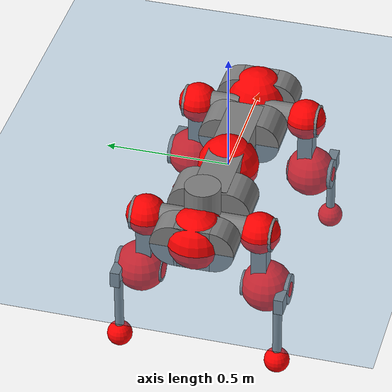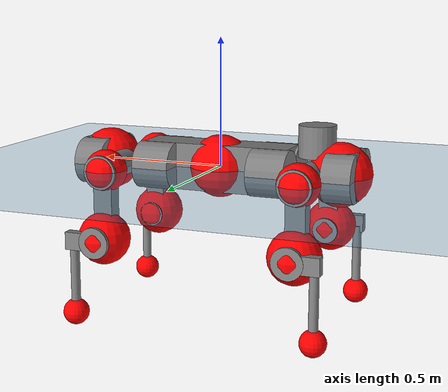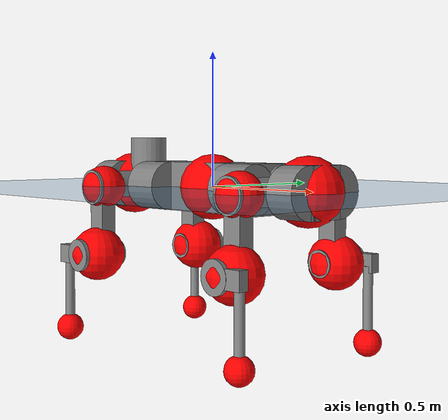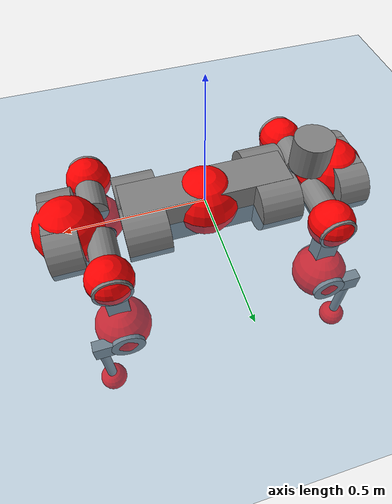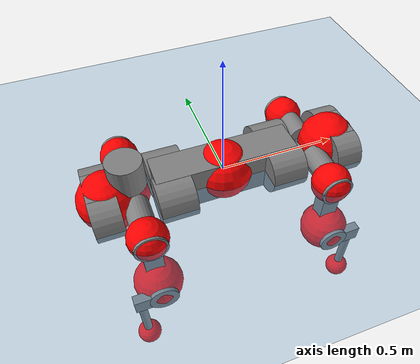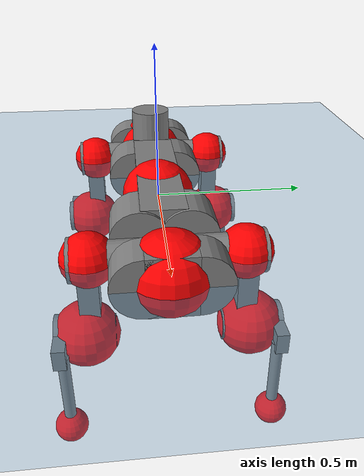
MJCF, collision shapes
<mujoco model="anymal_c">
  <compiler angle="radian" assetdir="assets" balanceinertia="true" inertiafromgeom="false"/>

  <option timestep="0.005" density="1.2" viscosity="2e-05"/>

  <size nkey="1"/>

  <visual>
    <quality shadowsize="8192"/>
    <map shadowclip="0.5"/>
  </visual>

  <default>
    <default class="/">
      <material specular="0" shininess="0.25"/>
      <geom contype="0" conaffinity="0" group="1" solref="-1000 -80"/>
      <site size="0.01 0.005 0.005" group="5"/>
      <general forcelimited="true" forcerange="-80 80" biastype="affine" gainprm="80" biasprm="0 -80 -2"/>
      <default class="anymal_c">
        <joint armature="0.01" damping="0.01" frictionloss="0.1"/>
        <default class="visual">
          <geom type="mesh" group="2"/>
          <default class="visual_zflip"/>
        </default>
        <default class="collision">
          <geom type="cylinder" group="3"/>
          <default class="foot">
            <geom size="0.03 0 0" type="sphere" condim="6" priority="1" friction="0.8 0.02 0.01" solimp="0.015 1 0.03"/>
          </default>
        </default>
      </default>
      <default class="reward_collision_sphere">
        <geom group="5" rgba="1 0 0 1"/>
      </default>
    </default>
  </default>

  <asset>
    <texture type="skybox" colorspace="auto" name="//unnamed_texture_0" builtin="gradient" rgb1="0.95 0.95 0.95" rgb2="0.95 0.95 0.95" width="100" height="600"/>
    <texture type="2d" colorspace="auto" name="texplane" builtin="checker" rgb1="0.345 0.575 0.748" rgb2="0.345 0.575 0.748" markrgb="1 1 1" width="512" height="512"/>
    <texture type="2d" colorspace="linear" name="base" file="base.png"/>
    <texture type="2d" colorspace="linear" name="top_shell" file="top_shell.png"/>
    <texture type="2d" colorspace="linear" name="bottom_shell" file="bottom_shell.png"/>
    <texture type="2d" colorspace="linear" name="remote" file="remote.png"/>
    <texture type="2d" colorspace="linear" name="hatch" file="hatch.png"/>
    <texture type="2d" colorspace="linear" name="handle" file="handle.png"/>
    <texture type="2d" colorspace="linear" name="face" file="face.png"/>
    <texture type="2d" colorspace="linear" name="battery" file="battery.png"/>
    <texture type="2d" colorspace="linear" name="lidar_cage" file="lidar_cage.png"/>
    <texture type="2d" colorspace="linear" name="depth_camera" file="depth_camera.png"/>
    <texture type="2d" colorspace="linear" name="wide_angle_camera" file="wide_angle_camera.png"/>
    <texture type="2d" colorspace="linear" name="lidar" file="lidar.png"/>
    <texture type="2d" colorspace="linear" name="drive" file="drive.png"/>
    <texture type="2d" colorspace="linear" name="hip_l" file="hip_l.png"/>
    <texture type="2d" colorspace="linear" name="shank_l" file="shank_l.png"/>
    <texture type="2d" colorspace="linear" name="foot" file="foot.png"/>
    <texture type="2d" colorspace="linear" name="thigh" file="thigh.png"/>
    <texture type="2d" colorspace="linear" name="shank_r" file="shank_r.png"/>
    <texture type="2d" colorspace="linear" name="hip_r" file="hip_r.png"/>
    <material name="MatPlane" class="/" texture="texplane" texuniform="true" texrepeat="2 2" specular="0.9" shininess="0.5"/>
    <material name="black_plastic" class="/" rgba="0.007 0.007 0.007 1"/>
    <material name="green" class="/" rgba="0.052 0.178 0.033 1"/>
    <material name="red" class="/" rgba="0.178 0.006 0.005 1"/>
    <material name="yellow" class="/" rgba="0.178 0.119 0.006 1"/>
    <material name="lwl" class="/" rgba="0.8 0.8 0.8 1"/>
    <material name="base" class="/" texture="base"/>
    <material name="top_shell" class="/" texture="top_shell"/>
    <material name="bottom_shell" class="/" texture="bottom_shell"/>
    <material name="hip_l" class="/" texture="hip_l"/>
    <material name="thigh" class="/" texture="thigh"/>
    <material name="shank_l" class="/" texture="shank_l"/>
    <material name="foot" class="/" texture="foot"/>
    <material name="hip_r" class="/" texture="hip_r"/>
    <material name="shank" class="/" texture="shank_r"/>
    <material name="hatch" class="/" texture="hatch"/>
    <material name="remote" class="/" texture="remote"/>
    <material name="handle" class="/" texture="handle"/>
    <material name="face" class="/" texture="face"/>
    <material name="depth_camera" class="/" texture="depth_camera"/>
    <material name="wide_angle_camera" class="/" texture="wide_angle_camera"/>
    <material name="battery" class="/" texture="battery"/>
    <material name="lidar_cage" class="/" texture="lidar_cage"/>
    <material name="lidar" class="/" texture="lidar"/>
    <material name="drive" class="/" texture="drive"/>
    <mesh name="base_0" class="/" file="base_0.obj"/>
    <mesh name="base_1" class="/" file="base_1.obj"/>
    <mesh name="base_2" class="/" file="base_2.obj"/>
    <mesh name="base_3" class="/" file="base_3.obj"/>
    <mesh name="base_4" class="/" file="base_4.obj"/>
    <mesh name="base_5" class="/" file="base_5.obj"/>
    <mesh name="top_shell" class="/" file="top_shell.obj"/>
    <mesh name="bottom_shell" class="/" file="bottom_shell.obj"/>
    <mesh name="remote" class="/" file="remote.obj"/>
    <mesh name="handle" class="/" file="handle.obj"/>
    <mesh name="face" class="/" file="face.obj"/>
    <mesh name="wide_angle_camera" class="/" file="wide_angle_camera.obj"/>
    <mesh name="depth_camera" class="/" file="depth_camera.obj"/>
    <mesh name="battery" class="/" file="battery.obj"/>
    <mesh name="lidar_cage" class="/" file="lidar_cage.obj"/>
    <mesh name="lidar" class="/" file="lidar.obj"/>
    <mesh name="drive" class="/" file="drive.obj"/>
    <mesh name="hip_l" class="/" file="hip_l.obj"/>
    <mesh name="thigh" class="/" file="thigh.obj"/>
    <mesh name="shank_l" class="/" file="shank_l.obj"/>
    <mesh name="foot" class="/" file="foot.obj"/>
    <mesh name="hip_r" class="/" file="hip_r.obj"/>
    <mesh name="hatch" class="/" file="hatch.obj"/>
    <mesh name="shank_r" class="/" file="shank_r.obj"/>
  </asset>

  <worldbody>
    <geom name="floor" class="/" size="100 100 0.125" type="plane" group="0" material="MatPlane"/>
    <light name="toplight_shadow" class="/" pos="0 0 5" dir="0.0990148 0.0990148 -0.990148" type="directional" ambient="0.04 0.04 0.04" diffuse="0.55 0.55 0.55" specular="0.12 0.12 0.12"/>
    <light name="toplight_fill" class="/" pos="0 0 5" dir="0.0990148 0.0990148 -0.990148" type="directional" castshadow="false" ambient="0.04 0.04 0.04" diffuse="0.3 0.3 0.3" specular="0.08 0.08 0.08"/>
    <body name="trunk" childclass="anymal_c" pos="0.000380702 -0.000235995 0.000571204" quat="1 -2.10341e-05 9.09906e-06 5.58329e-05">
      <inertial pos="0.00337158 -0.00383364 0.0443431" quat="0.50078 0.500209 0.499763 0.499247" mass="20.4222" diaginertia="0.849439 0.88304 0.135925"/>
      <joint name="//unnamed_joint_0" type="free" armature="0" damping="0" frictionloss="0"/>
      <geom name="//unnamed_geom_1" class="visual" material="green" mesh="base_0"/>
      <geom name="//unnamed_geom_2" class="visual" material="yellow" mesh="base_1"/>
      <geom name="//unnamed_geom_3" class="visual" material="red" mesh="base_2"/>
      <geom name="//unnamed_geom_4" class="visual" material="black_plastic" mesh="base_3"/>
      <geom name="//unnamed_geom_5" class="visual" material="lwl" mesh="base_4"/>
      <geom name="//unnamed_geom_6" class="visual" material="base" mesh="base_5"/>
      <geom name="trunk_1" class="collision" size="0.295422 0.0713088 0.0916827" type="box"/>
      <geom name="trunk_2" class="collision" size="0.0916827 0.0738555" pos="0.23251 0.0750689 0" quat="0.707107 0 0.707107 0"/>
      <geom name="trunk_3" class="collision" size="0.0916827 0.0738555" pos="-0.23251 0.0750689 0" quat="0.707107 0 0.707107 0"/>
      <geom name="trunk_4" class="collision" size="0.0916827 0.0738555" pos="0.23251 -0.0750689 0" quat="0.707107 0 0.707107 0"/>
      <geom name="trunk_5" class="collision" size="0.0916827 0.0738555" pos="-0.23251 -0.0750689 0" quat="0.707107 0 0.707107 0"/>
      <geom name="//unnamed_geom_12" class="visual" material="top_shell" mesh="top_shell"/>
      <geom name="//unnamed_geom_13" class="visual" material="bottom_shell" mesh="bottom_shell"/>
      <geom name="//unnamed_geom_14" class="visual" material="remote" mesh="remote"/>
      <geom name="//unnamed_geom_15" class="visual" material="handle" mesh="handle"/>
      <geom name="//unnamed_geom_16" class="visual" pos="0.443105 0 0" quat="1 0 0 0" material="face" mesh="face"/>
      <geom name="trunk_6" class="collision" size="0.0560283 0.0713088 0.0916827" pos="0.501901 0 0" type="box"/>
      <geom name="//unnamed_geom_18" class="collision" size="0.0916827 0.0560283" pos="0.501901 0.0750689 0" quat="0.707107 0 0.707107 0"/>
      <geom name="//unnamed_geom_19" class="collision" size="0.0916827 0.0560283" pos="0.501901 -0.0750689 0" quat="0.707107 0 0.707107 0"/>
      <geom name="//unnamed_geom_20" class="visual" pos="0.493503 0 -0.0255352" quat="0.965926 0 0.258819 0" material="depth_camera" mesh="depth_camera"/>
      <geom name="//unnamed_geom_21" class="visual" pos="0.548403 0 0.0136925" material="wide_angle_camera" mesh="wide_angle_camera"/>
      <geom name="//unnamed_geom_22" class="visual_zflip" pos="-0.443105 0 0" quat="0 0 0 1" material="face" mesh="face"/>
      <geom name="trunk_7" class="collision" size="0.0560283 0.0713088 0.0916827" pos="-0.501901 0 0" quat="0 0 0 1" type="box"/>
      <geom name="//unnamed_geom_24" class="collision" size="0.0916827 0.0560283" pos="-0.501901 -0.0750689 0" quat="0 -0.707107 0 0.707107"/>
      <geom name="//unnamed_geom_25" class="collision" size="0.0916827 0.0560283" pos="-0.501901 0.0750689 0" quat="0 -0.707107 0 0.707107"/>
      <geom name="//unnamed_geom_26" class="visual" pos="-0.493503 0 -0.0255352" quat="0 -0.258819 0 0.965926" material="depth_camera" mesh="depth_camera"/>
      <geom name="//unnamed_geom_27" class="visual_zflip" pos="-0.548403 0 0.0136925" quat="0 0 0 1" material="wide_angle_camera" mesh="wide_angle_camera"/>
      <geom name="//unnamed_geom_28" class="visual" material="battery" mesh="battery"/>
      <geom name="//unnamed_geom_29" class="visual" pos="0 0.082035 0.0277441" quat="0.683013 -0.183013 0.183013 0.683013" material="depth_camera" mesh="depth_camera"/>
      <geom name="//unnamed_geom_30" class="visual" pos="0 -0.082035 0.0277441" quat="0.683013 0.183013 0.183013 -0.683013" material="depth_camera" mesh="depth_camera"/>
      <geom name="//unnamed_geom_31" class="visual" pos="-0.38912 0 0.0672279" quat="1 0 0 0" material="lidar_cage" mesh="lidar_cage"/>
      <geom name="trunk_8" class="collision" size="0.0713088 0.0611218" pos="-0.38912 0 0.122108"/>
      <geom name="//unnamed_geom_33" class="visual" pos="-0.38912 1.33649e-06 0.130065" quat="0.707107 0 0 -0.707107" material="lidar" mesh="lidar"/>
      <geom name="//unnamed_geom_34" class="visual" pos="0.320597 0.111475 2.72117e-09" quat="0.258819 0.965926 0 0" material="drive" mesh="drive"/>
      <geom name="//unnamed_geom_35" class="visual" pos="0.320597 -0.111475 -2.72117e-09" quat="0.258819 -0.965926 0 0" material="drive" mesh="drive"/>
      <geom name="//unnamed_geom_36" class="visual" pos="-0.320597 0.111475 -2.72117e-09" quat="0 0 0.965926 -0.258819" material="drive" mesh="drive"/>
      <geom name="//unnamed_geom_37" class="visual" pos="-0.320597 -0.111475 2.72117e-09" quat="0 0 -0.965926 -0.258819" material="drive" mesh="drive"/>
      <geom name="//unnamed_geom_38" class="visual" pos="0.124005 0 0.0667706" quat="1 0 0 0" material="hatch" mesh="hatch"/>
      <geom name="//unnamed_geom_39" class="reward_collision_sphere" size="0.122244"/>
      <geom name="//unnamed_geom_40" class="reward_collision_sphere" size="0.122244" pos="0.481055 0 0"/>
      <geom name="//unnamed_geom_41" class="reward_collision_sphere" size="0.122244" pos="-0.481055 0 0"/>
      <site name="imu" pos="0.277285 0.00431894 0.0529503" size="0.010187"/>
      <camera name="track" pos="0 -2.14483 0" quat="0.707107 0.707107 0 0" mode="trackcom"/>
      <camera name="ego_camera" pos="0.481055 0 -0.0365866" quat="-0.5 -0.5 0.5 0.5"/>
      <body name="LF_HIP" pos="0.321138 0.111414 0.00212487" quat="0.257998 0.966145 0.00102622 -0.000189083">
        <inertial pos="0.0630039 -0.0160306 -0.00866121" quat="-0.123148 0.703752 -0.138882 0.68577" mass="2.75971" diaginertia="0.00793685 0.00667136 0.00206104"/>
        <joint name="LF_HAA" pos="0 0 0" axis="0.999997 0.00217376 -0.000957183" stiffness="0.000172153" range="-0.754724 0.484916" armature="0.010411" damping="0.0130415" frictionloss="0.112052"/>
        <geom name="//unnamed_geom_42" class="visual" pos="0 0.000160074 -2.6292e-05" quat="0.258819 -0.965926 0 0" material="hip_l" mesh="hip_l"/>
        <geom name="//unnamed_geom_43" class="visual" pos="0.0640338 -0.0775793 -0.0436236" quat="0.183013 -0.683013 0.683013 0.183013" material="drive" mesh="drive"/>
        <geom name="//unnamed_geom_44" class="collision" size="0.0509348 0.0713088" pos="0.0640338 -0.0128258 -0.00631577" quat="-0.353553 -0.612372 0.612372 -0.353553"/>
        <body name="LF_THIGH" pos="0.0641188 -0.0805221 -0.0371789" quat="0.183252 -0.682925 0.683124 0.182686">
          <inertial pos="0.0331268 0.000939152 -0.225708" quat="0.993023 -0.00681753 -0.0820873 0.0843792" mass="3.46544" diaginertia="0.0417461 0.0431414 0.00292934"/>
          <joint name="LF_HFE" pos="0 0 0" axis="0.999975 0.000488455 0.00698558" range="-3.14084 3.17481" armature="0.0113455" damping="0.0093392" frictionloss="0.110066"/>
          <geom name="//unnamed_geom_45" class="visual" pos="-6.76832e-05 -1.06653e-07 0" quat="0.707107 0 0 -0.707107" material="thigh" mesh="thigh"/>
          <geom name="//unnamed_geom_46" class="collision" size="0.0662153 0.0407479" pos="0.0427605 0 0" quat="0.5 0.5 -0.5 -0.5"/>
          <geom name="//unnamed_geom_47" class="collision" size="0.0382011 0.0305609 0.143956" pos="0.0320703 0 -0.129255" quat="0.707107 0 0 -0.707107" type="box"/>
          <geom name="//unnamed_geom_48" class="visual" pos="0.107222 0 -0.26068" quat="1 0 0 0" material="drive" mesh="drive"/>
          <geom name="//unnamed_geom_49" class="collision" size="0.0509348 0.0713088" pos="0.032391 0 -0.26068" quat="0.707107 0 0.707107 0"/>
          <geom name="//unnamed_geom_50" class="reward_collision_sphere" size="0.0814957" pos="0.0267253 0 0"/>
          <body name="LF_SHANK" pos="0.105691 -0.000366393 -0.261634" quat="0.999999 -0.00153858 -0.000379485 -0.000610515">
            <inertial pos="0.00478748 -0.0655834 -0.0732085" quat="0.992823 -0.116828 -0.00274342 -0.0254214" mass="0.61219" diaginertia="0.0141473 0.013512 0.000734571"/>
            <joint name="LF_KFE" pos="0 0 0" axis="0.99994 0.00316869 0.0104448" range="-3.10111 3.09304" armature="0.00936228" damping="0" frictionloss="0.104895"/>
            <geom name="//unnamed_geom_51" class="visual" pos="-2.207e-05 -0.000117678 0" quat="0.707107 0 0 -0.707107" material="shank_l" mesh="shank_l"/>
            <geom name="LF_kfe_act" class="collision" size="0.0611218 0.0203739" pos="0.0213802 0 0" quat="0.5 0.5 -0.5 -0.5"/>
            <geom name="//unnamed_geom_53" class="collision" size="0.0585741 0.034381 0.0193552" pos="0.0213802 -0.0616627 0" quat="0.5 0.5 -0.5 -0.5" type="box"/>
            <geom name="//unnamed_geom_54" class="visual" pos="0.0139506 -0.0943567 -0.30913" quat="0.382683 0 0 -0.92388" material="foot" mesh="foot"/>
            <geom name="LF_calf" class="collision" size="0.0178272 0.143893" pos="0.0139506 -0.0943188 -0.154565" quat="0.707107 0 0 -0.707107"/>
            <geom name="LF_foot" class="foot" size="0.0284755" pos="0.0139506 -0.0943188 -0.28855" quat="0.707107 0 0 -0.707107"/>
            <geom name="//unnamed_geom_57" class="reward_collision_sphere" size="0.10187" pos="-0.0534506 0 0"/>
            <geom name="//unnamed_geom_58" class="reward_collision_sphere" size="0.0509348" pos="0.0139506 -0.0943188 -0.28855"/>
            <site name="LF_foot" class="foot" pos="0.0139506 -0.0943188 -0.28855" quat="0.707107 0 0 -0.707107" size="0.010187"/>
          </body>
        </body>
      </body>
      <body name="RF_HIP" pos="0.323171 -0.111886 -5.73621e-05" quat="0.258583 -0.965989 -0.000827211 -0.000257309">
        <inertial pos="0.0615181 0.0191064 -0.0100337" quat="0.133505 0.67722 0.1258 0.712547" mass="3.13859" diaginertia="0.00836274 0.00711153 0.00210084"/>
        <joint name="RF_HAA" pos="0 0 0" axis="0.999987 -0.000769921 -0.00501046" stiffness="0.00443084" range="-0.516624 0.786206" armature="0.0103734" damping="0.0219133" frictionloss="0.101106"/>
        <geom name="//unnamed_geom_59" class="visual" pos="0 -0.000160073 -2.62919e-05" quat="0.258819 0.965926 0 0" material="hip_r" mesh="hip_r"/>
        <geom name="//unnamed_geom_60" class="visual" pos="0.0640338 0.0775793 -0.0436236" quat="0.183013 0.683013 0.683013 -0.183013" material="drive" mesh="drive"/>
        <geom name="//unnamed_geom_61" class="collision" size="0.0509348 0.0713088" pos="0.0640338 0.0128258 -0.00631577" quat="-0.353553 0.612372 0.612372 0.353553"/>
        <body name="RF_THIGH" pos="0.0594445 0.0784183 -0.0376201" quat="0.183883 0.682653 0.682809 -0.184238">
          <inertial pos="0.0330385 -0.0021606 -0.224687" quat="0.992533 -0.00244666 -0.0802487 0.0918311" mass="2.99696" diaginertia="0.0413166 0.0389205 0.00259125"/>
          <joint name="RF_HFE" pos="0 0 0" axis="0.999835 -0.00205568 0.0180364" stiffness="0.00437684" range="-3.24212 3.20643" armature="0.0100827" damping="0.016676" frictionloss="0.0890492"/>
          <geom name="//unnamed_geom_62" class="visual" pos="-6.76832e-05 -1.06653e-07 0" quat="0.707107 0 0 -0.707107" material="thigh" mesh="thigh"/>
          <geom name="//unnamed_geom_63" class="collision" size="0.0662153 0.0407479" pos="0.0427605 0 0" quat="0.5 0.5 0.5 0.5"/>
          <geom name="//unnamed_geom_64" class="collision" size="0.0382011 0.0305609 0.143956" pos="0.0320703 0 -0.129255" quat="0.707107 0 0 0.707107" type="box"/>
          <geom name="//unnamed_geom_65" class="visual" pos="0.107222 0 -0.26068" quat="1 0 0 0" material="drive" mesh="drive"/>
          <geom name="//unnamed_geom_66" class="collision" size="0.0509348 0.0713088" pos="0.032391 0 -0.26068" quat="0.707107 0 0.707107 0"/>
          <geom name="//unnamed_geom_67" class="reward_collision_sphere" size="0.0814957" pos="0.0267253 0 0"/>
          <body name="RF_SHANK" pos="0.103468 0.00296243 -0.259694" quat="0.999999 0.000928017 -0.000548616 -0.000394406">
            <inertial pos="0.00388895 0.0631945 -0.0781971" quat="0.994316 0.103936 -0.000167921 0.0230947" mass="0.657441" diaginertia="0.0141472 0.0129791 0.000710181"/>
            <joint name="RF_KFE" pos="0 0 0" axis="0.999659 -0.00791024 0.0248779" range="-3.08716 3.17874" armature="0.00998994" damping="0.0202776" frictionloss="0.127836"/>
            <geom name="//unnamed_geom_68" class="visual" pos="-2.20699e-05 0.000117678 0" quat="0.707107 0 0 0.707107" material="shank" mesh="shank_r"/>
            <geom name="RF_kfe_act" class="collision" size="0.0611218 0.0203739" pos="0.0213802 0 0" quat="0.5 0.5 0.5 0.5"/>
            <geom name="//unnamed_geom_70" class="collision" size="0.0585741 0.034381 0.0193552" pos="0.0213802 0.0616627 0" quat="0.5 0.5 0.5 0.5" type="box"/>
            <geom name="//unnamed_geom_71" class="visual" pos="0.0139506 0.0943567 -0.30913" quat="0.382683 0 0 0.92388" material="foot" mesh="foot"/>
            <geom name="RF_calf" class="collision" size="0.0178272 0.143893" pos="0.0139506 0.0943188 -0.154565" quat="0.707107 0 0 0.707107"/>
            <geom name="RF_foot" class="foot" size="0.0312057" pos="0.0139506 0.0943188 -0.28855" quat="0.707107 0 0 0.707107"/>
            <geom name="//unnamed_geom_74" class="reward_collision_sphere" size="0.10187" pos="-0.0534506 0 0"/>
            <geom name="//unnamed_geom_75" class="reward_collision_sphere" size="0.0509348" pos="0.0139506 0.0943188 -0.28855"/>
            <site name="RF_foot" class="foot" pos="0.0139506 0.0943188 -0.28855" quat="0.707107 0 0 0.707107" size="0.010187"/>
          </body>
        </body>
      </body>
      <body name="LH_HIP" pos="-0.322419 0.1107 0.00216359" quat="0.000287578 5.99486e-05 0.966092 -0.258197">
        <inertial pos="0.0593553 0.0185297 -0.00537423" quat="0.113019 0.671585 0.141498 0.718455" mass="3.12968" diaginertia="0.00839364 0.00696261 0.00205677"/>
        <joint name="LH_HAA" pos="0 0 0" axis="0.999994 0.00280511 0.00214051" stiffness="0.00557556" range="-0.443381 0.693804" armature="0.010036" damping="0.00678703" frictionloss="0.107949"/>
        <geom name="//unnamed_geom_76" class="visual" pos="0 -0.000160073 -2.62919e-05" quat="-0.258819 -0.965926 0 0" material="hip_r" mesh="hip_r"/>
        <geom name="//unnamed_geom_77" class="visual" pos="0.0640338 0.0775793 -0.0436236" quat="0.183013 0.683013 0.683013 -0.183013" material="drive" mesh="drive"/>
        <geom name="//unnamed_geom_78" class="collision" size="0.0509348 0.0713088" pos="0.0640338 0.0128258 -0.00631577" quat="-0.353553 0.612372 0.612372 0.353553"/>
        <body name="LH_THIGH" pos="0.063913 0.080006 -0.0390238" quat="0.183555 0.682797 0.683061 -0.183093">
          <inertial pos="0.0307099 0.000470436 -0.224784" quat="0.993493 -0.00112503 -0.0816907 0.0793592" mass="3.16983" diaginertia="0.0391917 0.040104 0.00260613"/>
          <joint name="LH_HFE" pos="0 0 0" axis="0.999999 0.00164578 -0.000517256" stiffness="0.00374875" range="-3.14312 3.12307" armature="0.0101405" damping="0" frictionloss="0.102742"/>
          <geom name="//unnamed_geom_79" class="visual" pos="-6.76832e-05 -1.06653e-07 0" quat="0.707107 0 0 -0.707107" material="thigh" mesh="thigh"/>
          <geom name="//unnamed_geom_80" class="collision" size="0.0662153 0.0407479" pos="0.0427605 0 0" quat="0.5 0.5 -0.5 -0.5"/>
          <geom name="//unnamed_geom_81" class="collision" size="0.0382011 0.0305609 0.143956" pos="0.0320703 0 -0.129255" quat="0.707107 0 0 -0.707107" type="box"/>
          <geom name="//unnamed_geom_82" class="visual" pos="0.107222 0 -0.26068" quat="1 0 0 0" material="drive" mesh="drive"/>
          <geom name="//unnamed_geom_83" class="collision" size="0.0509348 0.0713088" pos="0.032391 0 -0.26068" quat="0.707107 0 0.707107 0"/>
          <geom name="//unnamed_geom_84" class="reward_collision_sphere" size="0.0814957" pos="0.0267253 0 0"/>
          <body name="LH_SHANK" pos="0.106072 -0.00178628 -0.259767" quat="1 -0.000249554 0.000813931 -0.000397519">
            <inertial pos="0.00456424 0.0633029 -0.0735249" quat="0.992893 0.116294 -0.00110166 0.0252614" mass="0.59756" diaginertia="0.0127882 0.0116938 0.00061905"/>
            <joint name="LH_KFE" pos="0 0 0" axis="1 0.000508831 -0.000309907" range="-3.13734 3.25419" armature="0.0106552" damping="0.000352373" frictionloss="0.109075"/>
            <geom name="//unnamed_geom_85" class="visual" pos="-2.20699e-05 0.000117678 0" quat="-0.707107 0 0 -0.707107" material="shank" mesh="shank_r"/>
            <geom name="LH_kfe_act" class="collision" size="0.0611218 0.0203739" pos="0.0213802 0 0" quat="0.5 0.5 -0.5 -0.5"/>
            <geom name="//unnamed_geom_87" class="collision" size="0.0585741 0.034381 0.0193552" pos="0.0213802 0.0616627 0" quat="0.5 0.5 -0.5 -0.5" type="box"/>
            <geom name="//unnamed_geom_88" class="visual" pos="0.0139506 0.0943567 -0.30913" quat="-0.382683 0 0 -0.92388" material="foot" mesh="foot"/>
            <geom name="LH_calf" class="collision" size="0.0178272 0.143893" pos="0.0139506 0.0943188 -0.154565" quat="0.707107 0 0 -0.707107"/>
            <geom name="LH_foot" class="foot" size="0.0353357" pos="0.0139506 0.0943188 -0.28855" quat="0.707107 0 0 -0.707107"/>
            <geom name="//unnamed_geom_91" class="reward_collision_sphere" size="0.10187" pos="-0.0534506 0 0"/>
            <geom name="//unnamed_geom_92" class="reward_collision_sphere" size="0.0509348" pos="0.0139506 0.0943188 -0.28855"/>
            <site name="LH_foot" class="foot" pos="0.0139506 0.0943188 -0.28855" quat="0.707107 0 0 -0.707107" size="0.010187"/>
          </body>
        </body>
      </body>
      <body name="RH_HIP" pos="-0.319584 -0.113153 0.00311826" quat="-0.000664533 -0.000998441 -0.965926 -0.258815">
        <inertial pos="0.0630732 -0.0150749 -0.00938527" quat="-0.114931 0.724201 -0.123443 0.668644" mass="2.84762" diaginertia="0.00820802 0.00685929 0.00210431"/>
        <joint name="RH_HAA" pos="0 0 0" axis="0.999924 -0.0121189 -0.0022617" range="-0.675253 0.54391" armature="0.01163" damping="0.00761584" frictionloss="0.103271"/>
        <geom name="//unnamed_geom_93" class="visual" pos="0 0.000160074 -2.6292e-05" quat="-0.258819 0.965926 0 0" material="hip_l" mesh="hip_l"/>
        <geom name="//unnamed_geom_94" class="visual" pos="0.0640338 -0.0775793 -0.0436236" quat="-0.183013 0.683013 -0.683013 -0.183013" material="drive" mesh="drive"/>
        <geom name="//unnamed_geom_95" class="collision" size="0.0509348 0.0713088" pos="0.0640338 -0.0128258 -0.00631577" quat="0.353553 0.612372 -0.612372 0.353553"/>
        <body name="RH_THIGH" pos="0.0617932 -0.078647 -0.034166" quat="-0.183131 0.683163 -0.682771 -0.183234">
          <inertial pos="0.0332497 -0.00527832 -0.223908" quat="0.993899 -0.00363907 -0.0744038 0.0813408" mass="3.48795" diaginertia="0.0445698 0.0453053 0.00280079"/>
          <joint name="RH_HFE" pos="0 0 0" axis="1 -0.000445655 -3.02599e-05" range="-3.10294 3.20901" armature="0.00734405" damping="0.00359768" frictionloss="0.114107"/>
          <geom name="//unnamed_geom_96" class="visual" pos="-6.76832e-05 -1.06653e-07 0" quat="0.707107 0 0 -0.707107" material="thigh" mesh="thigh"/>
          <geom name="//unnamed_geom_97" class="collision" size="0.0662153 0.0407479" pos="0.0427605 0 0" quat="0.5 0.5 0.5 0.5"/>
          <geom name="//unnamed_geom_98" class="collision" size="0.0382011 0.0305609 0.143956" pos="0.0320703 0 -0.129255" quat="0.707107 0 0 0.707107" type="box"/>
          <geom name="//unnamed_geom_99" class="visual" pos="0.107222 0 -0.26068" quat="1 0 0 0" material="drive" mesh="drive"/>
          <geom name="//unnamed_geom_100" class="collision" size="0.0509348 0.0713088" pos="0.032391 0 -0.26068" quat="0.707107 0 0.707107 0"/>
          <geom name="//unnamed_geom_101" class="reward_collision_sphere" size="0.0814957" pos="0.0267253 0 0"/>
          <body name="RH_SHANK" pos="0.110406 0.0012751 -0.257289" quat="1 -0.000159493 -0.00020271 -0.000337809">
            <inertial pos="0.00720427 -0.0649055 -0.0732002" quat="0.994401 -0.102024 -0.0160418 -0.0223624" mass="0.635671" diaginertia="0.014383 0.0125039 0.000658008"/>
            <joint name="RH_KFE" pos="0 0 0" axis="0.999883 -0.000536959 0.0152901" range="-3.1695 3.08322" armature="0.00991339" damping="0.00994091" frictionloss="0.112889"/>
            <geom name="//unnamed_geom_102" class="visual" pos="-2.207e-05 -0.000117678 0" quat="0.707107 0 0 -0.707107" material="shank_l" mesh="shank_l"/>
            <geom name="RH_kfe_act" class="collision" size="0.0611218 0.0203739" pos="0.0213802 0 0" quat="0.5 0.5 0.5 0.5"/>
            <geom name="//unnamed_geom_104" class="collision" size="0.0585741 0.034381 0.0193552" pos="0.0213802 -0.0616627 0" quat="0.5 0.5 0.5 0.5" type="box"/>
            <geom name="//unnamed_geom_105" class="visual" pos="0.0139506 -0.0943567 -0.30913" quat="0.382683 0 0 -0.92388" material="foot" mesh="foot"/>
            <geom name="RH_calf" class="collision" size="0.0178272 0.143893" pos="0.0139506 -0.0943188 -0.154565" quat="0.707107 0 0 0.707107"/>
            <geom name="RH_foot" class="foot" size="0.0365303" pos="0.0139506 -0.0943188 -0.28855" quat="0.707107 0 0 0.707107"/>
            <geom name="//unnamed_geom_108" class="reward_collision_sphere" size="0.10187" pos="-0.0534506 0 0"/>
            <geom name="//unnamed_geom_109" class="reward_collision_sphere" size="0.0509348" pos="0.0139506 -0.0943188 -0.28855"/>
            <site name="RH_foot" class="foot" pos="0.0139506 -0.0943188 -0.28855" quat="0.707107 0 0 0.707107" size="0.010187"/>
          </body>
        </body>
      </body>
    </body>
  </worldbody>

  <contact>
    <pair class="/" geom1="floor" geom2="LF_foot" name="//unnamed_contact_0"/>
    <pair class="/" geom1="floor" geom2="RF_foot" name="//unnamed_contact_1"/>
    <pair class="/" geom1="floor" geom2="LH_foot" name="//unnamed_contact_2"/>
    <pair class="/" geom1="floor" geom2="RH_foot" name="//unnamed_contact_3"/>
  </contact>

  <actuator>
    <general name="LF_HAA" class="/" joint="LF_HAA" forcerange="-79.0625 79.0625" gainprm="74.5419" biasprm="0 -74.5419 -2.11571"/>
    <general name="LF_HFE" class="/" joint="LF_HFE" forcerange="-96.7481 96.7481" gainprm="74.5419" biasprm="0 -74.5419 -2.11571"/>
    <general name="LF_KFE" class="/" joint="LF_KFE" forcerange="-88.9404 88.9404" gainprm="74.5419" biasprm="0 -74.5419 -2.11571"/>
    <general name="RF_HAA" class="/" joint="RF_HAA" forcerange="-74.8117 74.8117" gainprm="74.5419" biasprm="0 -74.5419 -2.11571"/>
    <general name="RF_HFE" class="/" joint="RF_HFE" forcerange="-89.3268 89.3268" gainprm="74.5419" biasprm="0 -74.5419 -2.11571"/>
    <general name="RF_KFE" class="/" joint="RF_KFE" forcerange="-76.8129 76.8129" gainprm="74.5419" biasprm="0 -74.5419 -2.11571"/>
    <general name="LH_HAA" class="/" joint="LH_HAA" forcerange="-81.4258 81.4258" gainprm="74.5419" biasprm="0 -74.5419 -2.11571"/>
    <general name="LH_HFE" class="/" joint="LH_HFE" forcerange="-80.684 80.684" gainprm="74.5419" biasprm="0 -74.5419 -2.11571"/>
    <general name="LH_KFE" class="/" joint="LH_KFE" forcerange="-78.1882 78.1882" gainprm="74.5419" biasprm="0 -74.5419 -2.11571"/>
    <general name="RH_HAA" class="/" joint="RH_HAA" forcerange="-96.0783 96.0783" gainprm="74.5419" biasprm="0 -74.5419 -2.11571"/>
    <general name="RH_HFE" class="/" joint="RH_HFE" forcerange="-75.1526 75.1526" gainprm="74.5419" biasprm="0 -74.5419 -2.11571"/>
    <general name="RH_KFE" class="/" joint="RH_KFE" forcerange="-74.3394 74.3394" gainprm="74.5419" biasprm="0 -74.5419 -2.11571"/>
  </actuator>

  <sensor>
    <gyro site="imu" name="imu_angular_velocity"/>
    <velocimeter site="imu" name="imu_linear_velocity"/>
    <framelinvel objtype="site" objname="LF_foot" name="LF_foot_global_linear_velocity"/>
    <framelinvel objtype="site" objname="RF_foot" name="RF_foot_global_linear_velocity"/>
    <framelinvel objtype="site" objname="LH_foot" name="LH_foot_global_linear_velocity"/>
    <framelinvel objtype="site" objname="RH_foot" name="RH_foot_global_linear_velocity"/>
  </sensor>

  <keyframe>
    <key name="home" qpos="0 0 0.55 1 0 0 0 0 0.4 -0.8 0 -0.4 0.8 0 -0.4 0.8 0 0.4 -0.8"/>
  </keyframe>
</mujoco>
